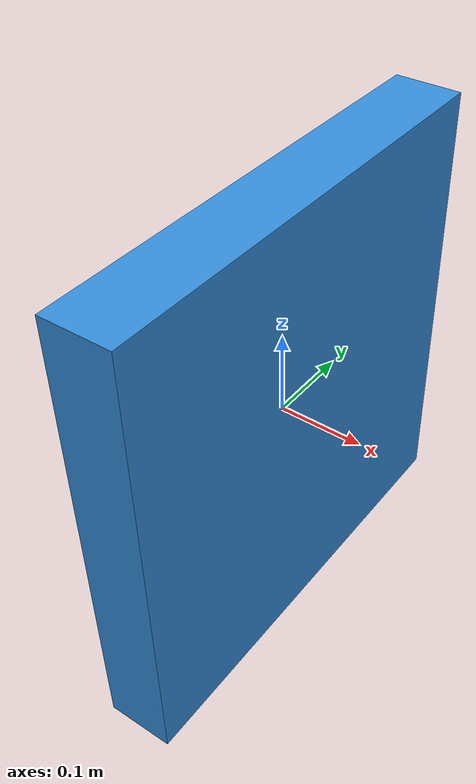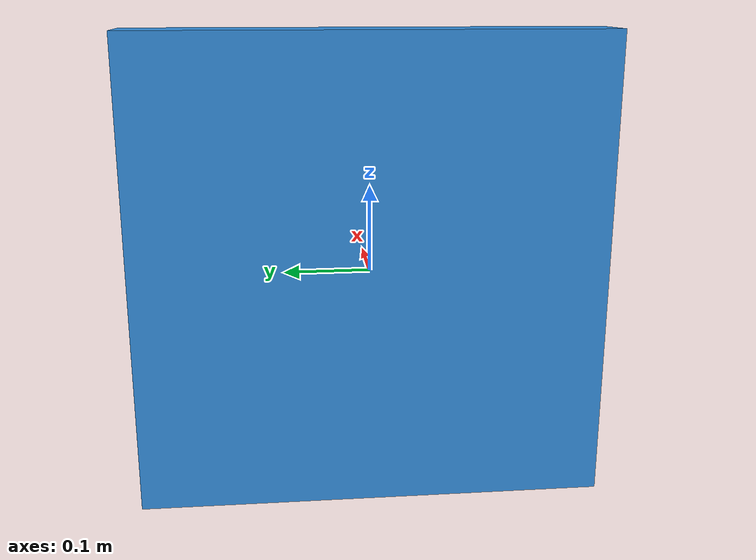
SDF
<?xml version="1.0" ?>
<sdf version="1.6">
  <model name="z1_contact_block">
    <static>true</static>
    <link name="contact_block_link">
      <collision name="contact_block_collision">
        <geometry>
          <box>
            <size>0.08 0.55 0.55</size>
          </box>
        </geometry>
        <surface>
          <friction>
            <ode>
              <mu>1.0</mu>
              <mu2>1.0</mu2>
            </ode>
          </friction>
          <contact>
            <ode>
              <kp>100000.0</kp>
              <kd>10.0</kd>
            </ode>
          </contact>
        </surface>
      </collision>
      <visual name="contact_block_visual">
        <geometry>
          <box>
            <size>0.08 0.55 0.55</size>
          </box>
        </geometry>
        <material>
          <ambient>0.2 0.55 0.85 1.0</ambient>
          <diffuse>0.2 0.55 0.85 1.0</diffuse>
        </material>
      </visual>
    </link>
  </model>
</sdf>
